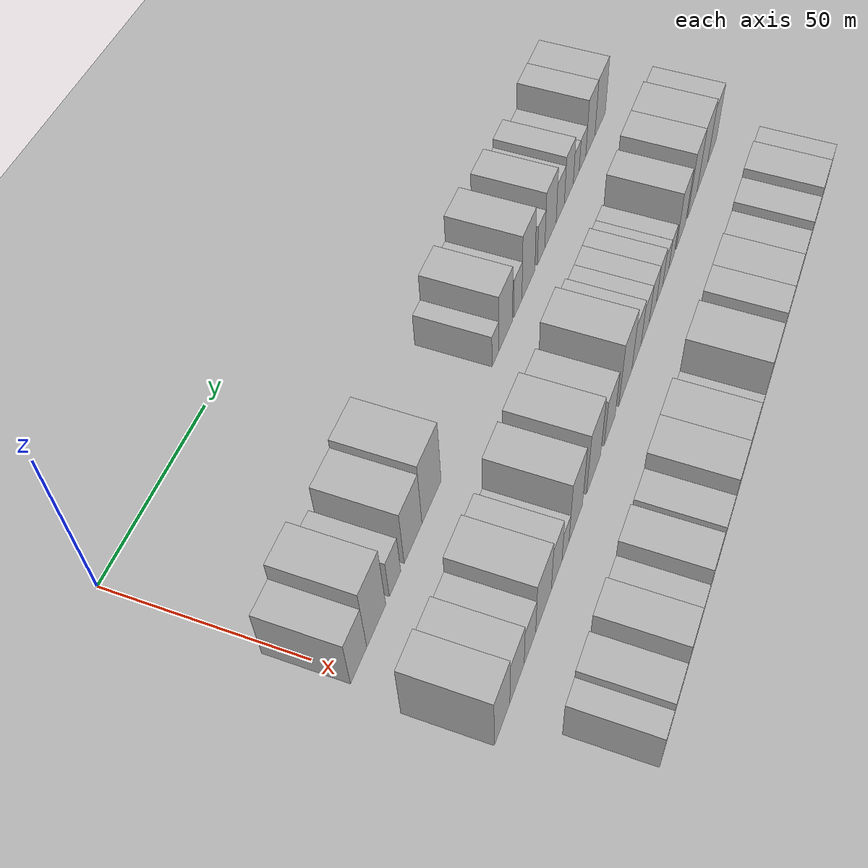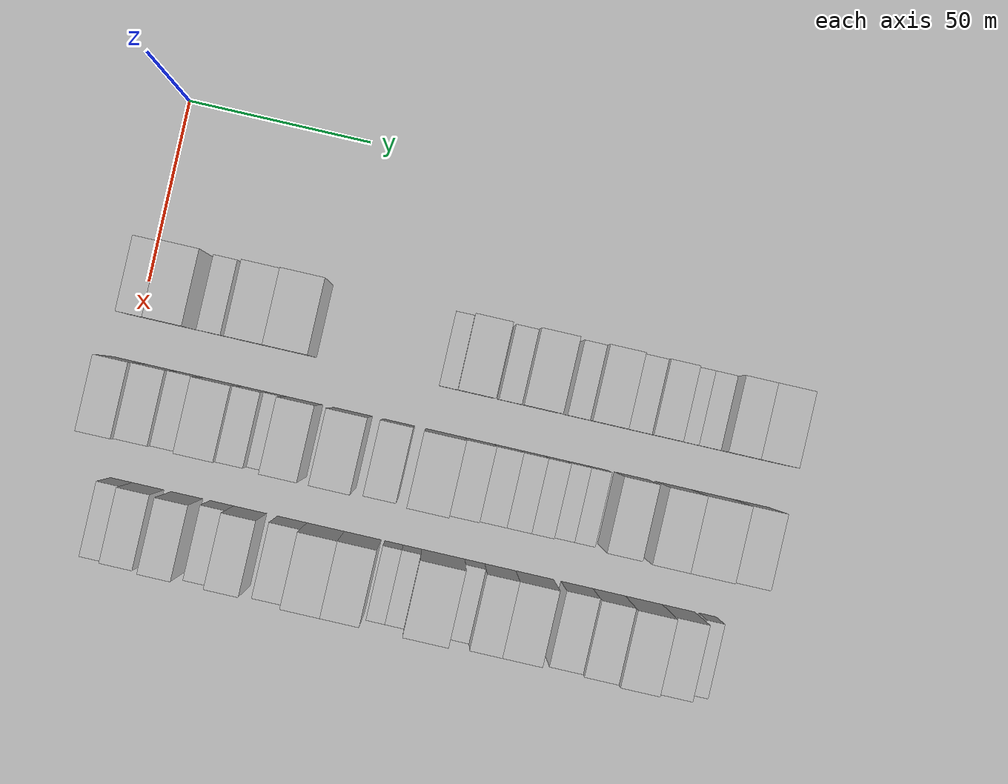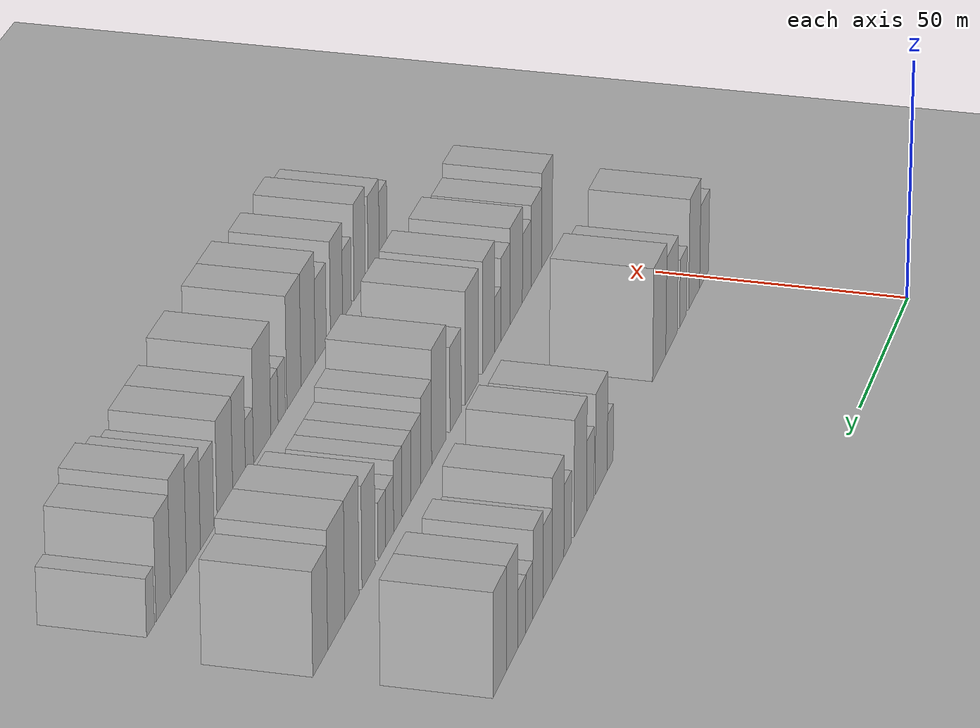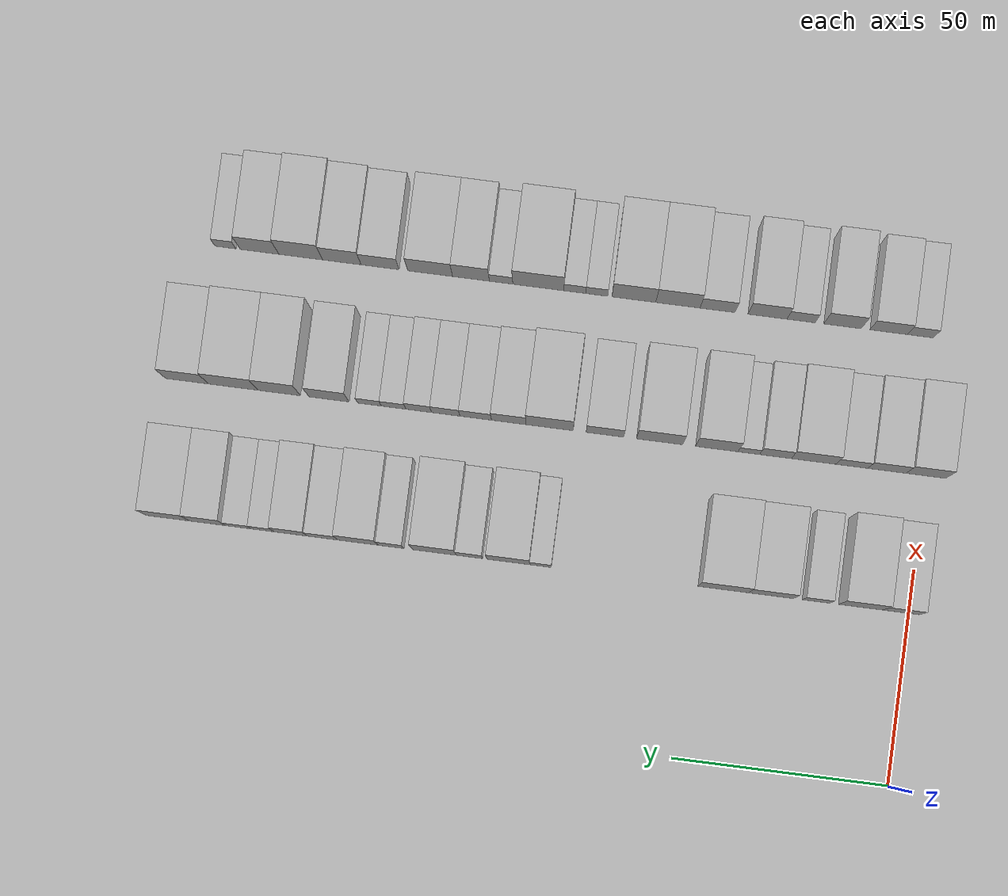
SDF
<sdf version="1.6">
 <world name="default">
  <include><name>ground_plane_1</name><uri>model://HANNAS_ground_plane</uri></include>
  <include>
   <name>ground_plane_2</name>
   <uri>model://HANNAS_ground_plane</uri>
   <pose>100 0 0  0 0 0</pose>
  </include>
  <model name="building_44">
   <static>1</static>
   <pose>50.0000 1.9351 0 0.000000 0.000000 0.000000</pose>
   <link name="link">
    <pose>0 0 9.00 0 0 0</pose>
    <collision name="collision"><geometry><box><size>20.0000 8.4766 18.0000</size></box></geometry></collision>
    <visual name="visual">
     <cast_shadows>0</cast_shadows>
     <geometry><box><size>20.0000 8.4766 18.0000</size></box></geometry>
     <material>
      <script>
       <uri>model://HANNAS_wall/materials/scripts</uri>
       <uri>model://HANNAS_wall/materials/textures</uri>
       <name>vrc/HANNAS_wall</name>
      </script>
     </material>
    </visual>
   </link>
  </model>
  <model name="building_45">
   <static>1</static>
   <pose>50.0000 11.3053 0 0.000000 0.000000 0.000000</pose>
   <link name="link">
    <pose>0 0 12.00 0 0 0</pose>
    <collision name="collision"><geometry><box><size>20.0000 10.2639 24.0000</size></box></geometry></collision>
    <visual name="visual">
     <cast_shadows>0</cast_shadows>
     <geometry><box><size>20.0000 10.2639 24.0000</size></box></geometry>
     <material>
      <script>
       <uri>model://HANNAS_wall/materials/scripts</uri>
       <uri>model://HANNAS_wall/materials/textures</uri>
       <name>vrc/HANNAS_wall</name>
      </script>
     </material>
    </visual>
   </link>
  </model>
  <model name="building_46">
   <static>1</static>
   <pose>50.0000 21.6280 0 0.000000 0.000000 0.000000</pose>
   <link name="link">
    <pose>0 0 7.50 0 0 0</pose>
    <collision name="collision"><geometry><box><size>20.0000 6.3814 15.0000</size></box></geometry></collision>
    <visual name="visual">
     <cast_shadows>0</cast_shadows>
     <geometry><box><size>20.0000 6.3814 15.0000</size></box></geometry>
     <material>
      <script>
       <uri>model://HANNAS_wall/materials/scripts</uri>
       <uri>model://HANNAS_wall/materials/textures</uri>
       <name>vrc/HANNAS_wall</name>
      </script>
     </material>
    </visual>
   </link>
  </model>
  <model name="building_47">
   <static>1</static>
   <pose>50.0000 32.0305 0 0.000000 0.000000 0.000000</pose>
   <link name="link">
    <pose>0 0 10.50 0 0 0</pose>
    <collision name="collision"><geometry><box><size>20.0000 10.4237 21.0000</size></box></geometry></collision>
    <visual name="visual">
     <cast_shadows>0</cast_shadows>
     <geometry><box><size>20.0000 10.4237 21.0000</size></box></geometry>
     <material>
      <script>
       <uri>model://HANNAS_wall/materials/scripts</uri>
       <uri>model://HANNAS_wall/materials/textures</uri>
       <name>vrc/HANNAS_wall</name>
      </script>
     </material>
    </visual>
   </link>
  </model>
  <model name="building_48">
   <static>1</static>
   <pose>50.0000 43.1093 0 0.000000 0.000000 0.000000</pose>
   <link name="link">
    <pose>0 0 12.00 0 0 0</pose>
    <collision name="collision"><geometry><box><size>20.0000 11.7338 24.0000</size></box></geometry></collision>
    <visual name="visual">
     <cast_shadows>0</cast_shadows>
     <geometry><box><size>20.0000 11.7338 24.0000</size></box></geometry>
     <material>
      <script>
       <uri>model://HANNAS_wall/materials/scripts</uri>
       <uri>model://HANNAS_wall/materials/textures</uri>
       <name>vrc/HANNAS_wall</name>
      </script>
     </material>
    </visual>
   </link>
  </model>
  <model name="building_49">
   <static>1</static>
   <pose>50.0000 85.4899 0 0.000000 0.000000 0.000000</pose>
   <link name="link">
    <pose>0 0 6.00 0 0 0</pose>
    <collision name="collision"><geometry><box><size>20.0000 5.0091 12.0000</size></box></geometry></collision>
    <visual name="visual">
     <cast_shadows>0</cast_shadows>
     <geometry><box><size>20.0000 5.0091 12.0000</size></box></geometry>
     <material>
      <script>
       <uri>model://HANNAS_wall/materials/scripts</uri>
       <uri>model://HANNAS_wall/materials/textures</uri>
       <name>vrc/HANNAS_wall</name>
      </script>
     </material>
    </visual>
   </link>
  </model>
  <model name="building_50">
   <static>1</static>
   <pose>50.0000 92.9599 0 0.000000 0.000000 0.000000</pose>
   <link name="link">
    <pose>0 0 10.50 0 0 0</pose>
    <collision name="collision"><geometry><box><size>20.0000 9.9309 21.0000</size></box></geometry></collision>
    <visual name="visual">
     <cast_shadows>0</cast_shadows>
     <geometry><box><size>20.0000 9.9309 21.0000</size></box></geometry>
     <material>
      <script>
       <uri>model://HANNAS_wall/materials/scripts</uri>
       <uri>model://HANNAS_wall/materials/textures</uri>
       <name>vrc/HANNAS_wall</name>
      </script>
     </material>
    </visual>
   </link>
  </model>
  <model name="building_51">
   <static>1</static>
   <pose>50.0000 101.9746 0 0.000000 0.000000 0.000000</pose>
   <link name="link">
    <pose>0 0 7.50 0 0 0</pose>
    <collision name="collision"><geometry><box><size>20.0000 6.0986 15.0000</size></box></geometry></collision>
    <visual name="visual">
     <cast_shadows>0</cast_shadows>
     <geometry><box><size>20.0000 6.0986 15.0000</size></box></geometry>
     <material>
      <script>
       <uri>model://HANNAS_wall/materials/scripts</uri>
       <uri>model://HANNAS_wall/materials/textures</uri>
       <name>vrc/HANNAS_wall</name>
      </script>
     </material>
    </visual>
   </link>
  </model>
  <model name="building_52">
   <static>1</static>
   <pose>50.0000 110.0865 0 0.000000 0.000000 0.000000</pose>
   <link name="link">
    <pose>0 0 12.00 0 0 0</pose>
    <collision name="collision"><geometry><box><size>20.0000 10.1251 24.0000</size></box></geometry></collision>
    <visual name="visual">
     <cast_shadows>0</cast_shadows>
     <geometry><box><size>20.0000 10.1251 24.0000</size></box></geometry>
     <material>
      <script>
       <uri>model://HANNAS_wall/materials/scripts</uri>
       <uri>model://HANNAS_wall/materials/textures</uri>
       <name>vrc/HANNAS_wall</name>
      </script>
     </material>
    </visual>
   </link>
  </model>
  <model name="building_53">
   <static>1</static>
   <pose>50.0000 120.1503 0 0.000000 0.000000 0.000000</pose>
   <link name="link">
    <pose>0 0 7.50 0 0 0</pose>
    <collision name="collision"><geometry><box><size>20.0000 6.0026 15.0000</size></box></geometry></collision>
    <visual name="visual">
     <cast_shadows>0</cast_shadows>
     <geometry><box><size>20.0000 6.0026 15.0000</size></box></geometry>
     <material>
      <script>
       <uri>model://HANNAS_wall/materials/scripts</uri>
       <uri>model://HANNAS_wall/materials/textures</uri>
       <name>vrc/HANNAS_wall</name>
      </script>
     </material>
    </visual>
   </link>
  </model>
  <model name="building_54">
   <static>1</static>
   <pose>50.0000 127.8277 0 0.000000 0.000000 0.000000</pose>
   <link name="link">
    <pose>0 0 10.50 0 0 0</pose>
    <collision name="collision"><geometry><box><size>20.0000 9.3522 21.0000</size></box></geometry></collision>
    <visual name="visual">
     <cast_shadows>0</cast_shadows>
     <geometry><box><size>20.0000 9.3522 21.0000</size></box></geometry>
     <material>
      <script>
       <uri>model://HANNAS_wall/materials/scripts</uri>
       <uri>model://HANNAS_wall/materials/textures</uri>
       <name>vrc/HANNAS_wall</name>
      </script>
     </material>
    </visual>
   </link>
  </model>
  <model name="building_55">
   <static>1</static>
   <pose>50.0000 136.0248 0 0.000000 0.000000 0.000000</pose>
   <link name="link">
    <pose>0 0 7.50 0 0 0</pose>
    <collision name="collision"><geometry><box><size>20.0000 7.0419 15.0000</size></box></geometry></collision>
    <visual name="visual">
     <cast_shadows>0</cast_shadows>
     <geometry><box><size>20.0000 7.0419 15.0000</size></box></geometry>
     <material>
      <script>
       <uri>model://HANNAS_wall/materials/scripts</uri>
       <uri>model://HANNAS_wall/materials/textures</uri>
       <name>vrc/HANNAS_wall</name>
      </script>
     </material>
    </visual>
   </link>
  </model>
  <model name="building_56">
   <static>1</static>
   <pose>50.0000 143.4289 0 0.000000 0.000000 0.000000</pose>
   <link name="link">
    <pose>0 0 9.00 0 0 0</pose>
    <collision name="collision"><geometry><box><size>20.0000 7.7662 18.0000</size></box></geometry></collision>
    <visual name="visual">
     <cast_shadows>0</cast_shadows>
     <geometry><box><size>20.0000 7.7662 18.0000</size></box></geometry>
     <material>
      <script>
       <uri>model://HANNAS_wall/materials/scripts</uri>
       <uri>model://HANNAS_wall/materials/textures</uri>
       <name>vrc/HANNAS_wall</name>
      </script>
     </material>
    </visual>
   </link>
  </model>
  <model name="building_57">
   <static>1</static>
   <pose>50.0000 149.9668 0 0.000000 0.000000 0.000000</pose>
   <link name="link">
    <pose>0 0 6.00 0 0 0</pose>
    <collision name="collision"><geometry><box><size>20.0000 5.3098 12.0000</size></box></geometry></collision>
    <visual name="visual">
     <cast_shadows>0</cast_shadows>
     <geometry><box><size>20.0000 5.3098 12.0000</size></box></geometry>
     <material>
      <script>
       <uri>model://HANNAS_wall/materials/scripts</uri>
       <uri>model://HANNAS_wall/materials/textures</uri>
       <name>vrc/HANNAS_wall</name>
      </script>
     </material>
    </visual>
   </link>
  </model>
  <model name="building_58">
   <static>1</static>
   <pose>50.0000 155.5779 0 0.000000 0.000000 0.000000</pose>
   <link name="link">
    <pose>0 0 6.00 0 0 0</pose>
    <collision name="collision"><geometry><box><size>20.0000 5.9124 12.0000</size></box></geometry></collision>
    <visual name="visual">
     <cast_shadows>0</cast_shadows>
     <geometry><box><size>20.0000 5.9124 12.0000</size></box></geometry>
     <material>
      <script>
       <uri>model://HANNAS_wall/materials/scripts</uri>
       <uri>model://HANNAS_wall/materials/textures</uri>
       <name>vrc/HANNAS_wall</name>
      </script>
     </material>
    </visual>
   </link>
  </model>
  <model name="building_59">
   <static>1</static>
   <pose>50.0000 162.7658 0 0.000000 0.000000 0.000000</pose>
   <link name="link">
    <pose>0 0 10.50 0 0 0</pose>
    <collision name="collision"><geometry><box><size>20.0000 8.4634 21.0000</size></box></geometry></collision>
    <visual name="visual">
     <cast_shadows>0</cast_shadows>
     <geometry><box><size>20.0000 8.4634 21.0000</size></box></geometry>
     <material>
      <script>
       <uri>model://HANNAS_wall/materials/scripts</uri>
       <uri>model://HANNAS_wall/materials/textures</uri>
       <name>vrc/HANNAS_wall</name>
      </script>
     </material>
    </visual>
   </link>
  </model>
  <model name="building_60">
   <static>1</static>
   <pose>50.0000 172.0055 0 0.000000 0.000000 0.000000</pose>
   <link name="link">
    <pose>0 0 10.50 0 0 0</pose>
    <collision name="collision"><geometry><box><size>20.0000 10.0160 21.0000</size></box></geometry></collision>
    <visual name="visual">
     <cast_shadows>0</cast_shadows>
     <geometry><box><size>20.0000 10.0160 21.0000</size></box></geometry>
     <material>
      <script>
       <uri>model://HANNAS_wall/materials/scripts</uri>
       <uri>model://HANNAS_wall/materials/textures</uri>
       <name>vrc/HANNAS_wall</name>
      </script>
     </material>
    </visual>
   </link>
  </model>
  <model name="building_115">
   <static>1</static>
   <pose>82.0000 -0.0208 0 0.000000 0.000000 0.000000</pose>
   <link name="link">
    <pose>0 0 10.50 0 0 0</pose>
    <collision name="collision"><geometry><box><size>20.0000 9.2483 21.0000</size></box></geometry></collision>
    <visual name="visual">
     <cast_shadows>0</cast_shadows>
     <geometry><box><size>20.0000 9.2483 21.0000</size></box></geometry>
     <material>
      <script>
       <uri>model://HANNAS_wall/materials/scripts</uri>
       <uri>model://HANNAS_wall/materials/textures</uri>
       <name>vrc/HANNAS_wall</name>
      </script>
     </material>
    </visual>
   </link>
  </model>
  <model name="building_116">
   <static>1</static>
   <pose>82.0000 9.0560 0 0.000000 0.000000 0.000000</pose>
   <link name="link">
    <pose>0 0 9.00 0 0 0</pose>
    <collision name="collision"><geometry><box><size>20.0000 8.9052 18.0000</size></box></geometry></collision>
    <visual name="visual">
     <cast_shadows>0</cast_shadows>
     <geometry><box><size>20.0000 8.9052 18.0000</size></box></geometry>
     <material>
      <script>
       <uri>model://HANNAS_wall/materials/scripts</uri>
       <uri>model://HANNAS_wall/materials/textures</uri>
       <name>vrc/HANNAS_wall</name>
      </script>
     </material>
    </visual>
   </link>
  </model>
  <model name="building_117">
   <static>1</static>
   <pose>82.0000 17.2116 0 0.000000 0.000000 0.000000</pose>
   <link name="link">
    <pose>0 0 7.50 0 0 0</pose>
    <collision name="collision"><geometry><box><size>20.0000 7.4060 15.0000</size></box></geometry></collision>
    <visual name="visual">
     <cast_shadows>0</cast_shadows>
     <geometry><box><size>20.0000 7.4060 15.0000</size></box></geometry>
     <material>
      <script>
       <uri>model://HANNAS_wall/materials/scripts</uri>
       <uri>model://HANNAS_wall/materials/textures</uri>
       <name>vrc/HANNAS_wall</name>
      </script>
     </material>
    </visual>
   </link>
  </model>
  <model name="building_118">
   <static>1</static>
   <pose>82.0000 26.1264 0 0.000000 0.000000 0.000000</pose>
   <link name="link">
    <pose>0 0 10.50 0 0 0</pose>
    <collision name="collision"><geometry><box><size>20.0000 10.4236 21.0000</size></box></geometry></collision>
    <visual name="visual">
     <cast_shadows>0</cast_shadows>
     <geometry><box><size>20.0000 10.4236 21.0000</size></box></geometry>
     <material>
      <script>
       <uri>model://HANNAS_wall/materials/scripts</uri>
       <uri>model://HANNAS_wall/materials/textures</uri>
       <name>vrc/HANNAS_wall</name>
      </script>
     </material>
    </visual>
   </link>
  </model>
  <model name="building_119">
   <static>1</static>
   <pose>82.0000 35.0071 0 0.000000 0.000000 0.000000</pose>
   <link name="link">
    <pose>0 0 9.00 0 0 0</pose>
    <collision name="collision"><geometry><box><size>20.0000 7.3377 18.0000</size></box></geometry></collision>
    <visual name="visual">
     <cast_shadows>0</cast_shadows>
     <geometry><box><size>20.0000 7.3377 18.0000</size></box></geometry>
     <material>
      <script>
       <uri>model://HANNAS_wall/materials/scripts</uri>
       <uri>model://HANNAS_wall/materials/textures</uri>
       <name>vrc/HANNAS_wall</name>
      </script>
     </material>
    </visual>
   </link>
  </model>
  <model name="building_120">
   <static>1</static>
   <pose>82.0000 41.1804 0 0.000000 0.000000 0.000000</pose>
   <link name="link">
    <pose>0 0 6.00 0 0 0</pose>
    <collision name="collision"><geometry><box><size>20.0000 5.0089 12.0000</size></box></geometry></collision>
    <visual name="visual">
     <cast_shadows>0</cast_shadows>
     <geometry><box><size>20.0000 5.0089 12.0000</size></box></geometry>
     <material>
      <script>
       <uri>model://HANNAS_wall/materials/scripts</uri>
       <uri>model://HANNAS_wall/materials/textures</uri>
       <name>vrc/HANNAS_wall</name>
      </script>
     </material>
    </visual>
   </link>
  </model>
  <model name="building_121">
   <static>1</static>
   <pose>82.0000 48.6120 0 0.000000 0.000000 0.000000</pose>
   <link name="link">
    <pose>0 0 12.00 0 0 0</pose>
    <collision name="collision"><geometry><box><size>20.0000 9.8542 24.0000</size></box></geometry></collision>
    <visual name="visual">
     <cast_shadows>0</cast_shadows>
     <geometry><box><size>20.0000 9.8542 24.0000</size></box></geometry>
     <material>
      <script>
       <uri>model://HANNAS_wall/materials/scripts</uri>
       <uri>model://HANNAS_wall/materials/textures</uri>
       <name>vrc/HANNAS_wall</name>
      </script>
     </material>
    </visual>
   </link>
  </model>
  <model name="building_122">
   <static>1</static>
   <pose>82.0000 61.9054 0 0.000000 0.000000 0.000000</pose>
   <link name="link">
    <pose>0 0 12.00 0 0 0</pose>
    <collision name="collision"><geometry><box><size>20.0000 10.7326 24.0000</size></box></geometry></collision>
    <visual name="visual">
     <cast_shadows>0</cast_shadows>
     <geometry><box><size>20.0000 10.7326 24.0000</size></box></geometry>
     <material>
      <script>
       <uri>model://HANNAS_wall/materials/scripts</uri>
       <uri>model://HANNAS_wall/materials/textures</uri>
       <name>vrc/HANNAS_wall</name>
      </script>
     </material>
    </visual>
   </link>
  </model>
  <model name="building_123">
   <static>1</static>
   <pose>82.0000 74.6354 0 0.000000 0.000000 0.000000</pose>
   <link name="link">
    <pose>0 0 9.00 0 0 0</pose>
    <collision name="collision"><geometry><box><size>20.0000 8.7275 18.0000</size></box></geometry></collision>
    <visual name="visual">
     <cast_shadows>0</cast_shadows>
     <geometry><box><size>20.0000 8.7275 18.0000</size></box></geometry>
     <material>
      <script>
       <uri>model://HANNAS_wall/materials/scripts</uri>
       <uri>model://HANNAS_wall/materials/textures</uri>
       <name>vrc/HANNAS_wall</name>
      </script>
     </material>
    </visual>
   </link>
  </model>
  <model name="building_124">
   <static>1</static>
   <pose>82.0000 87.4886 0 0.000000 0.000000 0.000000</pose>
   <link name="link">
    <pose>0 0 12.00 0 0 0</pose>
    <collision name="collision"><geometry><box><size>20.0000 10.9789 24.0000</size></box></geometry></collision>
    <visual name="visual">
     <cast_shadows>0</cast_shadows>
     <geometry><box><size>20.0000 10.9789 24.0000</size></box></geometry>
     <material>
      <script>
       <uri>model://HANNAS_wall/materials/scripts</uri>
       <uri>model://HANNAS_wall/materials/textures</uri>
       <name>vrc/HANNAS_wall</name>
      </script>
     </material>
    </visual>
   </link>
  </model>
  <model name="building_125">
   <static>1</static>
   <pose>82.0000 97.0021 0 0.000000 0.000000 0.000000</pose>
   <link name="link">
    <pose>0 0 9.00 0 0 0</pose>
    <collision name="collision"><geometry><box><size>20.0000 8.0480 18.0000</size></box></geometry></collision>
    <visual name="visual">
     <cast_shadows>0</cast_shadows>
     <geometry><box><size>20.0000 8.0480 18.0000</size></box></geometry>
     <material>
      <script>
       <uri>model://HANNAS_wall/materials/scripts</uri>
       <uri>model://HANNAS_wall/materials/textures</uri>
       <name>vrc/HANNAS_wall</name>
      </script>
     </material>
    </visual>
   </link>
  </model>
  <model name="building_126">
   <static>1</static>
   <pose>82.0000 104.6953 0 0.000000 0.000000 0.000000</pose>
   <link name="link">
    <pose>0 0 7.50 0 0 0</pose>
    <collision name="collision"><geometry><box><size>20.0000 7.3383 15.0000</size></box></geometry></collision>
    <visual name="visual">
     <cast_shadows>0</cast_shadows>
     <geometry><box><size>20.0000 7.3383 15.0000</size></box></geometry>
     <material>
      <script>
       <uri>model://HANNAS_wall/materials/scripts</uri>
       <uri>model://HANNAS_wall/materials/textures</uri>
       <name>vrc/HANNAS_wall</name>
      </script>
     </material>
    </visual>
   </link>
  </model>
  <model name="building_127">
   <static>1</static>
   <pose>82.0000 111.6538 0 0.000000 0.000000 0.000000</pose>
   <link name="link">
    <pose>0 0 7.50 0 0 0</pose>
    <collision name="collision"><geometry><box><size>20.0000 6.5787 15.0000</size></box></geometry></collision>
    <visual name="visual">
     <cast_shadows>0</cast_shadows>
     <geometry><box><size>20.0000 6.5787 15.0000</size></box></geometry>
     <material>
      <script>
       <uri>model://HANNAS_wall/materials/scripts</uri>
       <uri>model://HANNAS_wall/materials/textures</uri>
       <name>vrc/HANNAS_wall</name>
      </script>
     </material>
    </visual>
   </link>
  </model>
  <model name="building_128">
   <static>1</static>
   <pose>82.0000 117.9527 0 0.000000 0.000000 0.000000</pose>
   <link name="link">
    <pose>0 0 7.50 0 0 0</pose>
    <collision name="collision"><geometry><box><size>20.0000 6.0192 15.0000</size></box></geometry></collision>
    <visual name="visual">
     <cast_shadows>0</cast_shadows>
     <geometry><box><size>20.0000 6.0192 15.0000</size></box></geometry>
     <material>
      <script>
       <uri>model://HANNAS_wall/materials/scripts</uri>
       <uri>model://HANNAS_wall/materials/textures</uri>
       <name>vrc/HANNAS_wall</name>
      </script>
     </material>
    </visual>
   </link>
  </model>
  <model name="building_129">
   <static>1</static>
   <pose>82.0000 123.8117 0 0.000000 0.000000 0.000000</pose>
   <link name="link">
    <pose>0 0 6.00 0 0 0</pose>
    <collision name="collision"><geometry><box><size>20.0000 5.6988 12.0000</size></box></geometry></collision>
    <visual name="visual">
     <cast_shadows>0</cast_shadows>
     <geometry><box><size>20.0000 5.6988 12.0000</size></box></geometry>
     <material>
      <script>
       <uri>model://HANNAS_wall/materials/scripts</uri>
       <uri>model://HANNAS_wall/materials/textures</uri>
       <name>vrc/HANNAS_wall</name>
      </script>
     </material>
    </visual>
   </link>
  </model>
  <model name="building_130">
   <static>1</static>
   <pose>82.0000 129.4139 0 0.000000 0.000000 0.000000</pose>
   <link name="link">
    <pose>0 0 6.00 0 0 0</pose>
    <collision name="collision"><geometry><box><size>20.0000 5.5055 12.0000</size></box></geometry></collision>
    <visual name="visual">
     <cast_shadows>0</cast_shadows>
     <geometry><box><size>20.0000 5.5055 12.0000</size></box></geometry>
     <material>
      <script>
       <uri>model://HANNAS_wall/materials/scripts</uri>
       <uri>model://HANNAS_wall/materials/textures</uri>
       <name>vrc/HANNAS_wall</name>
      </script>
     </material>
    </visual>
   </link>
  </model>
  <model name="building_131">
   <static>1</static>
   <pose>82.0000 138.8457 0 0.000000 0.000000 0.000000</pose>
   <link name="link">
    <pose>0 0 10.50 0 0 0</pose>
    <collision name="collision"><geometry><box><size>20.0000 9.3580 21.0000</size></box></geometry></collision>
    <visual name="visual">
     <cast_shadows>0</cast_shadows>
     <geometry><box><size>20.0000 9.3580 21.0000</size></box></geometry>
     <material>
      <script>
       <uri>model://HANNAS_wall/materials/scripts</uri>
       <uri>model://HANNAS_wall/materials/textures</uri>
       <name>vrc/HANNAS_wall</name>
      </script>
     </material>
    </visual>
   </link>
  </model>
  <model name="building_132">
   <static>1</static>
   <pose>82.0000 150.4597 0 0.000000 0.000000 0.000000</pose>
   <link name="link">
    <pose>0 0 12.00 0 0 0</pose>
    <collision name="collision"><geometry><box><size>20.0000 9.8701 24.0000</size></box></geometry></collision>
    <visual name="visual">
     <cast_shadows>0</cast_shadows>
     <geometry><box><size>20.0000 9.8701 24.0000</size></box></geometry>
     <material>
      <script>
       <uri>model://HANNAS_wall/materials/scripts</uri>
       <uri>model://HANNAS_wall/materials/textures</uri>
       <name>vrc/HANNAS_wall</name>
      </script>
     </material>
    </visual>
   </link>
  </model>
  <model name="building_133">
   <static>1</static>
   <pose>82.0000 161.1952 0 0.000000 0.000000 0.000000</pose>
   <link name="link">
    <pose>0 0 12.00 0 0 0</pose>
    <collision name="collision"><geometry><box><size>20.0000 11.6009 24.0000</size></box></geometry></collision>
    <visual name="visual">
     <cast_shadows>0</cast_shadows>
     <geometry><box><size>20.0000 11.6009 24.0000</size></box></geometry>
     <material>
      <script>
       <uri>model://HANNAS_wall/materials/scripts</uri>
       <uri>model://HANNAS_wall/materials/textures</uri>
       <name>vrc/HANNAS_wall</name>
      </script>
     </material>
    </visual>
   </link>
  </model>
  <model name="building_134">
   <static>1</static>
   <pose>82.0000 171.9854 0 0.000000 0.000000 0.000000</pose>
   <link name="link">
    <pose>0 0 10.50 0 0 0</pose>
    <collision name="collision"><geometry><box><size>20.0000 9.9794 21.0000</size></box></geometry></collision>
    <visual name="visual">
     <cast_shadows>0</cast_shadows>
     <geometry><box><size>20.0000 9.9794 21.0000</size></box></geometry>
     <material>
      <script>
       <uri>model://HANNAS_wall/materials/scripts</uri>
       <uri>model://HANNAS_wall/materials/textures</uri>
       <name>vrc/HANNAS_wall</name>
      </script>
     </material>
    </visual>
   </link>
  </model>
  <model name="building_187">
   <static>1</static>
   <pose>114.0000 5.0965 0 0.000000 0.000000 0.000000</pose>
   <link name="link">
    <pose>0 0 7.50 0 0 0</pose>
    <collision name="collision"><geometry><box><size>20.0000 6.1041 15.0000</size></box></geometry></collision>
    <visual name="visual">
     <cast_shadows>0</cast_shadows>
     <geometry><box><size>20.0000 6.1041 15.0000</size></box></geometry>
     <material>
      <script>
       <uri>model://HANNAS_wall/materials/scripts</uri>
       <uri>model://HANNAS_wall/materials/textures</uri>
       <name>vrc/HANNAS_wall</name>
      </script>
     </material>
    </visual>
   </link>
  </model>
  <model name="building_188">
   <static>1</static>
   <pose>114.0000 12.5118 0 0.000000 0.000000 0.000000</pose>
   <link name="link">
    <pose>0 0 9.00 0 0 0</pose>
    <collision name="collision"><geometry><box><size>20.0000 8.7264 18.0000</size></box></geometry></collision>
    <visual name="visual">
     <cast_shadows>0</cast_shadows>
     <geometry><box><size>20.0000 8.7264 18.0000</size></box></geometry>
     <material>
      <script>
       <uri>model://HANNAS_wall/materials/scripts</uri>
       <uri>model://HANNAS_wall/materials/textures</uri>
       <name>vrc/HANNAS_wall</name>
      </script>
     </material>
    </visual>
   </link>
  </model>
  <model name="building_189">
   <static>1</static>
   <pose>114.0000 23.2560 0 0.000000 0.000000 0.000000</pose>
   <link name="link">
    <pose>0 0 10.50 0 0 0</pose>
    <collision name="collision"><geometry><box><size>20.0000 8.7620 21.0000</size></box></geometry></collision>
    <visual name="visual">
     <cast_shadows>0</cast_shadows>
     <geometry><box><size>20.0000 8.7620 21.0000</size></box></geometry>
     <material>
      <script>
       <uri>model://HANNAS_wall/materials/scripts</uri>
       <uri>model://HANNAS_wall/materials/textures</uri>
       <name>vrc/HANNAS_wall</name>
      </script>
     </material>
    </visual>
   </link>
  </model>
  <model name="building_190">
   <static>1</static>
   <pose>114.0000 32.9273 0 0.000000 0.000000 0.000000</pose>
   <link name="link">
    <pose>0 0 7.50 0 0 0</pose>
    <collision name="collision"><geometry><box><size>20.0000 6.5805 15.0000</size></box></geometry></collision>
    <visual name="visual">
     <cast_shadows>0</cast_shadows>
     <geometry><box><size>20.0000 6.5805 15.0000</size></box></geometry>
     <material>
      <script>
       <uri>model://HANNAS_wall/materials/scripts</uri>
       <uri>model://HANNAS_wall/materials/textures</uri>
       <name>vrc/HANNAS_wall</name>
      </script>
     </material>
    </visual>
   </link>
  </model>
  <model name="building_191">
   <static>1</static>
   <pose>114.0000 40.7739 0 0.000000 0.000000 0.000000</pose>
   <link name="link">
    <pose>0 0 10.50 0 0 0</pose>
    <collision name="collision"><geometry><box><size>20.0000 9.1126 21.0000</size></box></geometry></collision>
    <visual name="visual">
     <cast_shadows>0</cast_shadows>
     <geometry><box><size>20.0000 9.1126 21.0000</size></box></geometry>
     <material>
      <script>
       <uri>model://HANNAS_wall/materials/scripts</uri>
       <uri>model://HANNAS_wall/materials/textures</uri>
       <name>vrc/HANNAS_wall</name>
      </script>
     </material>
    </visual>
   </link>
  </model>
  <model name="building_192">
   <static>1</static>
   <pose>114.0000 52.4194 0 0.000000 0.000000 0.000000</pose>
   <link name="link">
    <pose>0 0 9.00 0 0 0</pose>
    <collision name="collision"><geometry><box><size>20.0000 8.1785 18.0000</size></box></geometry></collision>
    <visual name="visual">
     <cast_shadows>0</cast_shadows>
     <geometry><box><size>20.0000 8.1785 18.0000</size></box></geometry>
     <material>
      <script>
       <uri>model://HANNAS_wall/materials/scripts</uri>
       <uri>model://HANNAS_wall/materials/textures</uri>
       <name>vrc/HANNAS_wall</name>
      </script>
     </material>
    </visual>
   </link>
  </model>
  <model name="building_193">
   <static>1</static>
   <pose>114.0000 61.6758 0 0.000000 0.000000 0.000000</pose>
   <link name="link">
    <pose>0 0 12.00 0 0 0</pose>
    <collision name="collision"><geometry><box><size>20.0000 10.3343 24.0000</size></box></geometry></collision>
    <visual name="visual">
     <cast_shadows>0</cast_shadows>
     <geometry><box><size>20.0000 10.3343 24.0000</size></box></geometry>
     <material>
      <script>
       <uri>model://HANNAS_wall/materials/scripts</uri>
       <uri>model://HANNAS_wall/materials/textures</uri>
       <name>vrc/HANNAS_wall</name>
      </script>
     </material>
    </visual>
   </link>
  </model>
  <model name="building_194">
   <static>1</static>
   <pose>114.0000 71.9471 0 0.000000 0.000000 0.000000</pose>
   <link name="link">
    <pose>0 0 12.00 0 0 0</pose>
    <collision name="collision"><geometry><box><size>20.0000 10.2083 24.0000</size></box></geometry></collision>
    <visual name="visual">
     <cast_shadows>0</cast_shadows>
     <geometry><box><size>20.0000 10.2083 24.0000</size></box></geometry>
     <material>
      <script>
       <uri>model://HANNAS_wall/materials/scripts</uri>
       <uri>model://HANNAS_wall/materials/textures</uri>
       <name>vrc/HANNAS_wall</name>
      </script>
     </material>
    </visual>
   </link>
  </model>
  <model name="building_195">
   <static>1</static>
   <pose>114.0000 80.5943 0 0.000000 0.000000 0.000000</pose>
   <link name="link">
    <pose>0 0 6.00 0 0 0</pose>
    <collision name="collision"><geometry><box><size>20.0000 5.0862 12.0000</size></box></geometry></collision>
    <visual name="visual">
     <cast_shadows>0</cast_shadows>
     <geometry><box><size>20.0000 5.0862 12.0000</size></box></geometry>
     <material>
      <script>
       <uri>model://HANNAS_wall/materials/scripts</uri>
       <uri>model://HANNAS_wall/materials/textures</uri>
       <name>vrc/HANNAS_wall</name>
      </script>
     </material>
    </visual>
   </link>
  </model>
  <model name="building_196">
   <static>1</static>
   <pose>114.0000 85.6971 0 0.000000 0.000000 0.000000</pose>
   <link name="link">
    <pose>0 0 6.00 0 0 0</pose>
    <collision name="collision"><geometry><box><size>20.0000 5.1195 12.0000</size></box></geometry></collision>
    <visual name="visual">
     <cast_shadows>0</cast_shadows>
     <geometry><box><size>20.0000 5.1195 12.0000</size></box></geometry>
     <material>
      <script>
       <uri>model://HANNAS_wall/materials/scripts</uri>
       <uri>model://HANNAS_wall/materials/textures</uri>
       <name>vrc/HANNAS_wall</name>
      </script>
     </material>
    </visual>
   </link>
  </model>
  <model name="building_197">
   <static>1</static>
   <pose>114.0000 94.2268 0 0.000000 0.000000 0.000000</pose>
   <link name="link">
    <pose>0 0 12.00 0 0 0</pose>
    <collision name="collision"><geometry><box><size>20.0000 11.9398 24.0000</size></box></geometry></collision>
    <visual name="visual">
     <cast_shadows>0</cast_shadows>
     <geometry><box><size>20.0000 11.9398 24.0000</size></box></geometry>
     <material>
      <script>
       <uri>model://HANNAS_wall/materials/scripts</uri>
       <uri>model://HANNAS_wall/materials/textures</uri>
       <name>vrc/HANNAS_wall</name>
      </script>
     </material>
    </visual>
   </link>
  </model>
  <model name="building_198">
   <static>1</static>
   <pose>114.0000 102.9414 0 0.000000 0.000000 0.000000</pose>
   <link name="link">
    <pose>0 0 6.00 0 0 0</pose>
    <collision name="collision"><geometry><box><size>20.0000 5.4894 12.0000</size></box></geometry></collision>
    <visual name="visual">
     <cast_shadows>0</cast_shadows>
     <geometry><box><size>20.0000 5.4894 12.0000</size></box></geometry>
     <material>
      <script>
       <uri>model://HANNAS_wall/materials/scripts</uri>
       <uri>model://HANNAS_wall/materials/textures</uri>
       <name>vrc/HANNAS_wall</name>
      </script>
     </material>
    </visual>
   </link>
  </model>
  <model name="building_199">
   <static>1</static>
   <pose>114.0000 109.9793 0 0.000000 0.000000 0.000000</pose>
   <link name="link">
    <pose>0 0 10.50 0 0 0</pose>
    <collision name="collision"><geometry><box><size>20.0000 8.5865 21.0000</size></box></geometry></collision>
    <visual name="visual">
     <cast_shadows>0</cast_shadows>
     <geometry><box><size>20.0000 8.5865 21.0000</size></box></geometry>
     <material>
      <script>
       <uri>model://HANNAS_wall/materials/scripts</uri>
       <uri>model://HANNAS_wall/materials/textures</uri>
       <name>vrc/HANNAS_wall</name>
      </script>
     </material>
    </visual>
   </link>
  </model>
  <model name="building_200">
   <static>1</static>
   <pose>114.0000 119.5129 0 0.000000 0.000000 0.000000</pose>
   <link name="link">
    <pose>0 0 10.50 0 0 0</pose>
    <collision name="collision"><geometry><box><size>20.0000 10.4807 21.0000</size></box></geometry></collision>
    <visual name="visual">
     <cast_shadows>0</cast_shadows>
     <geometry><box><size>20.0000 10.4807 21.0000</size></box></geometry>
     <material>
      <script>
       <uri>model://HANNAS_wall/materials/scripts</uri>
       <uri>model://HANNAS_wall/materials/textures</uri>
       <name>vrc/HANNAS_wall</name>
      </script>
     </material>
    </visual>
   </link>
  </model>
  <model name="building_201">
   <static>1</static>
   <pose>114.0000 131.1917 0 0.000000 0.000000 0.000000</pose>
   <link name="link">
    <pose>0 0 9.00 0 0 0</pose>
    <collision name="collision"><geometry><box><size>20.0000 8.8768 18.0000</size></box></geometry></collision>
    <visual name="visual">
     <cast_shadows>0</cast_shadows>
     <geometry><box><size>20.0000 8.8768 18.0000</size></box></geometry>
     <material>
      <script>
       <uri>model://HANNAS_wall/materials/scripts</uri>
       <uri>model://HANNAS_wall/materials/textures</uri>
       <name>vrc/HANNAS_wall</name>
      </script>
     </material>
    </visual>
   </link>
  </model>
  <model name="building_202">
   <static>1</static>
   <pose>114.0000 140.1316 0 0.000000 0.000000 0.000000</pose>
   <link name="link">
    <pose>0 0 10.50 0 0 0</pose>
    <collision name="collision"><geometry><box><size>20.0000 9.0031 21.0000</size></box></geometry></collision>
    <visual name="visual">
     <cast_shadows>0</cast_shadows>
     <geometry><box><size>20.0000 9.0031 21.0000</size></box></geometry>
     <material>
      <script>
       <uri>model://HANNAS_wall/materials/scripts</uri>
       <uri>model://HANNAS_wall/materials/textures</uri>
       <name>vrc/HANNAS_wall</name>
      </script>
     </material>
    </visual>
   </link>
  </model>
  <model name="building_203">
   <static>1</static>
   <pose>114.0000 149.7520 0 0.000000 0.000000 0.000000</pose>
   <link name="link">
    <pose>0 0 12.00 0 0 0</pose>
    <collision name="collision"><geometry><box><size>20.0000 10.2379 24.0000</size></box></geometry></collision>
    <visual name="visual">
     <cast_shadows>0</cast_shadows>
     <geometry><box><size>20.0000 10.2379 24.0000</size></box></geometry>
     <material>
      <script>
       <uri>model://HANNAS_wall/materials/scripts</uri>
       <uri>model://HANNAS_wall/materials/textures</uri>
       <name>vrc/HANNAS_wall</name>
      </script>
     </material>
    </visual>
   </link>
  </model>
  <model name="building_204">
   <static>1</static>
   <pose>114.0000 159.3787 0 0.000000 0.000000 0.000000</pose>
   <link name="link">
    <pose>0 0 10.50 0 0 0</pose>
    <collision name="collision"><geometry><box><size>20.0000 9.0155 21.0000</size></box></geometry></collision>
    <visual name="visual">
     <cast_shadows>0</cast_shadows>
     <geometry><box><size>20.0000 9.0155 21.0000</size></box></geometry>
     <material>
      <script>
       <uri>model://HANNAS_wall/materials/scripts</uri>
       <uri>model://HANNAS_wall/materials/textures</uri>
       <name>vrc/HANNAS_wall</name>
      </script>
     </material>
    </visual>
   </link>
  </model>
  <model name="building_205">
   <static>1</static>
   <pose>114.0000 167.3270 0 0.000000 0.000000 0.000000</pose>
   <link name="link">
    <pose>0 0 6.00 0 0 0</pose>
    <collision name="collision"><geometry><box><size>20.0000 4.8809 12.0000</size></box></geometry></collision>
    <visual name="visual">
     <cast_shadows>0</cast_shadows>
     <geometry><box><size>20.0000 4.8809 12.0000</size></box></geometry>
     <material>
      <script>
       <uri>model://HANNAS_wall/materials/scripts</uri>
       <uri>model://HANNAS_wall/materials/textures</uri>
       <name>vrc/HANNAS_wall</name>
      </script>
     </material>
    </visual>
   </link>
  </model>
 </world>
</sdf>
